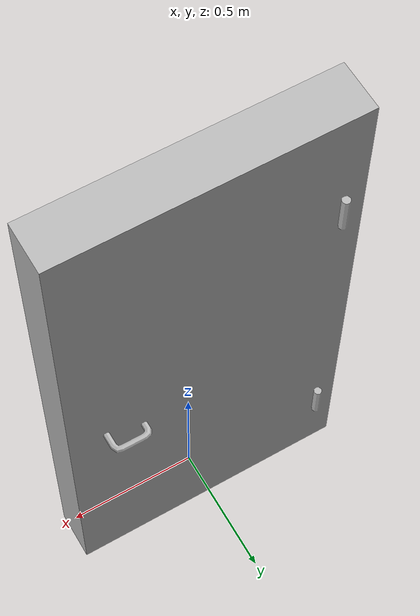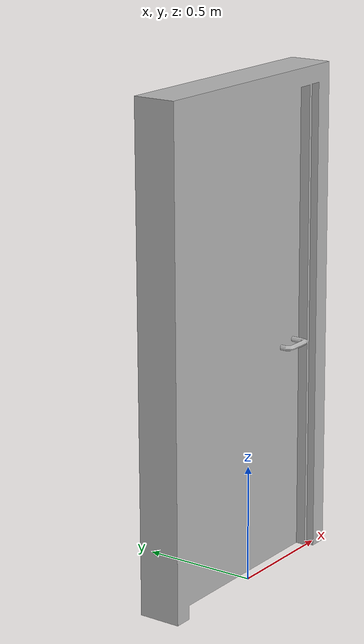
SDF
<?xml version="1.0" ?>
<sdf version="1.5">
  <model name="door">
    <static>true</static>
    <link name="link">
      <collision name="collision">
        <geometry>
          <mesh>
            <uri>model://door/meshes/door.obj</uri>
            <scale>0.01 0.01 0.01</scale>
          </mesh>
        </geometry>
      </collision>
      <visual name="visual">
        <geometry>
          <mesh>
            <uri>model://door/meshes/door.obj</uri>
            <scale>0.01 0.01 0.01</scale>
          </mesh>
        </geometry>
      </visual>
    </link>
  </model>
</sdf>
